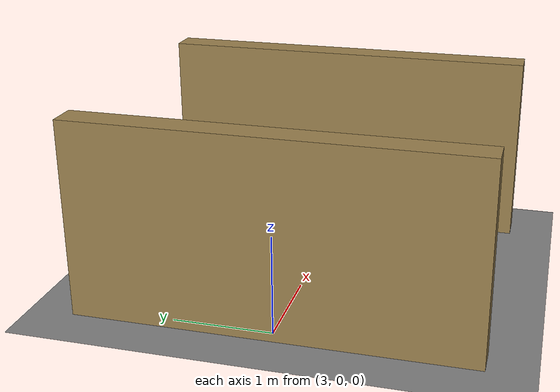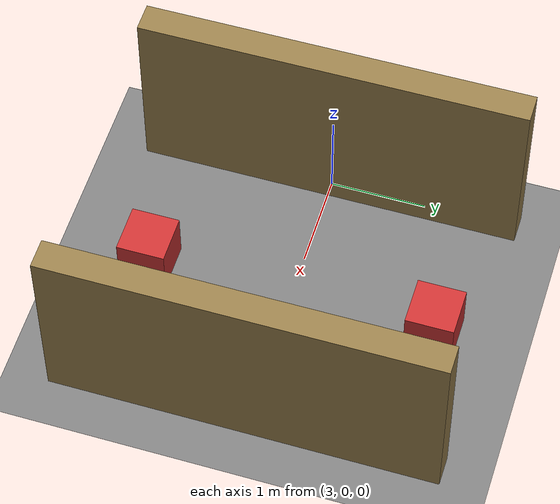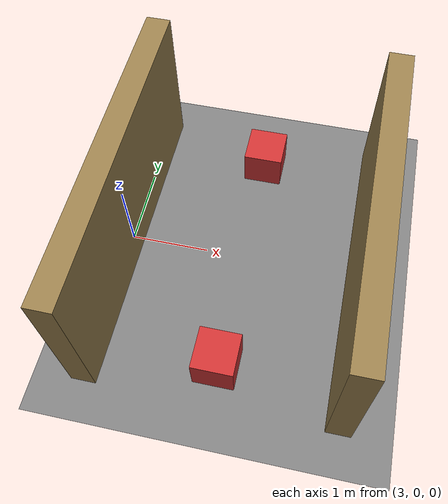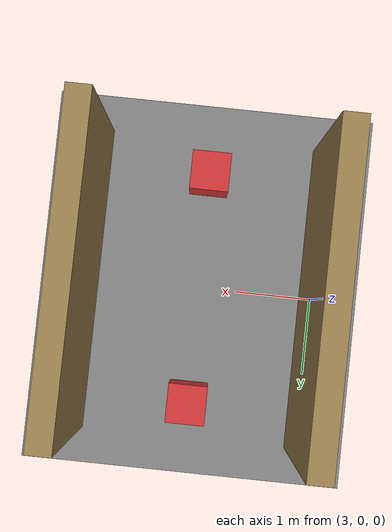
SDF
<?xml version="1.0" ?>
<sdf version="1.9">
  <world name="warehouse">
    <gravity>0 0 -9.8</gravity>

    <!-- 环境光 -->
    <scene>
      <ambient>0.4 0.4 0.4</ambient>
      <background>0.7 0.7 0.7</background>
      <shadows>true</shadows>
    </scene>

    <physics type="dartsim">
      <real_time_update_rate>1000</real_time_update_rate>
      <max_step_size>0.001</max_step_size>
    </physics>
    <plugin filename="gz-sim-physics-system" name="gz::sim::systems::Physics">
      <engine>gz-physics-dartsim-plugin</engine>
    </plugin>

    <!-- 地面 -->
    <model name="ground">
      <static>true</static>
      <link name="link">
        <collision name="collision">
          <geometry><plane><normal>0 0 1</normal><size>20 20</size></plane></geometry>
        </collision>
        <visual name="visual">
          <geometry><plane><normal>0 0 1</normal><size>20 20</size></plane></geometry>
          <material><ambient>0.3 0.3 0.3</ambient><diffuse>0.5 0.5 0.5</diffuse></material>
        </visual>
      </link>
    </model>

    <!-- 货架行 -->
    <model name="shelf_row_1">
      <static>true</static>
      <pose>3 0 1.0 0 0 0</pose>
      <link name="link">
        <collision name="collision">
          <geometry><box><size>0.3 4 2</size></box></geometry>
        </collision>
        <visual name="visual">
          <geometry><box><size>0.3 4 2</size></box></geometry>
          <material><ambient>0.6 0.5 0.3</ambient><diffuse>0.6 0.5 0.3</diffuse></material>
        </visual>
      </link>
    </model>

    <model name="shelf_row_2">
      <static>true</static>
      <pose>6 0 1.0 0 0 0</pose>
      <link name="link">
        <collision name="collision">
          <geometry><box><size>0.3 4 2</size></box></geometry>
        </collision>
        <visual name="visual">
          <geometry><box><size>0.3 4 2</size></box></geometry>
          <material><ambient>0.6 0.5 0.3</ambient><diffuse>0.6 0.5 0.3</diffuse></material>
        </visual>
      </link>
    </model>

    <!-- 障碍物（箱子） -->
    <model name="obstacle_1">
      <static>true</static>
      <pose>4.5 1.5 0.25 0 0 0</pose>
      <link name="link">
        <collision name="collision">
          <geometry><box><size>0.5 0.5 0.5</size></box></geometry>
        </collision>
        <visual name="visual">
          <geometry><box><size>0.5 0.5 0.5</size></box></geometry>
          <material><ambient>0.5 0.1 0.1</ambient><diffuse>0.8 0.2 0.2</diffuse></material>
        </visual>
      </link>
    </model>

    <model name="obstacle_2">
      <static>true</static>
      <pose>4.5 -1.5 0.25 0 0 0</pose>
      <link name="link">
        <collision name="collision">
          <geometry><box><size>0.5 0.5 0.5</size></box></geometry>
        </collision>
        <visual name="visual">
          <geometry><box><size>0.5 0.5 0.5</size></box></geometry>
          <material><ambient>0.5 0.1 0.1</ambient><diffuse>0.8 0.2 0.2</diffuse></material>
        </visual>
      </link>
    </model>

    <!-- AMR 机器人（通过 launch 文件 spawn） -->
    <light type="directional" name="sun">
      <cast_shadows>true</cast_shadows>
      <pose>0 0 10 0 0 0</pose>
      <diffuse>1 1 1 1</diffuse>
      <specular>0.5 0.5 0.5 1</specular>
      <attenuation>
        <range>20</range>
        <constant>0.9</constant>
        <linear>0.01</linear>
        <quadratic>0.001</quadratic>
      </attenuation>
      <direction>-0.5 0.1 -0.9</direction>
    </light>

    <!-- 传感器系统插件：激活所有模型传感器（imu/lidar/camera）。
         缺此插件 = 话题存在但零数据（此前"无数据"的根因）。 -->
    <plugin filename="gz-sim-sensors-system" name="gz::sim::systems::Sensors">
      <!-- ogre2（唯一可用）：ogre(OGRE1) 在 gz-sim8 报 geometry 加载失败。
           ogre2 有 gpu_lidar 引擎 bug（world_pose 不随车更新，见 gz-sensors#504），
           平台无关——Windows 原生同样遇到，这是 gz-sim8 引擎局限。 -->
      <render_engine>ogre2</render_engine>
    </plugin>

    <!-- 用户命令系统插件：提供 /world/warehouse/create 服务。
         缺此插件 = AMR 模型无法 spawn（ros_gz_sim create 一直等待服务）。 -->
    <plugin filename="gz-sim-user-commands-system" name="gz::sim::systems::UserCommands"/>
  </world>
</sdf>
